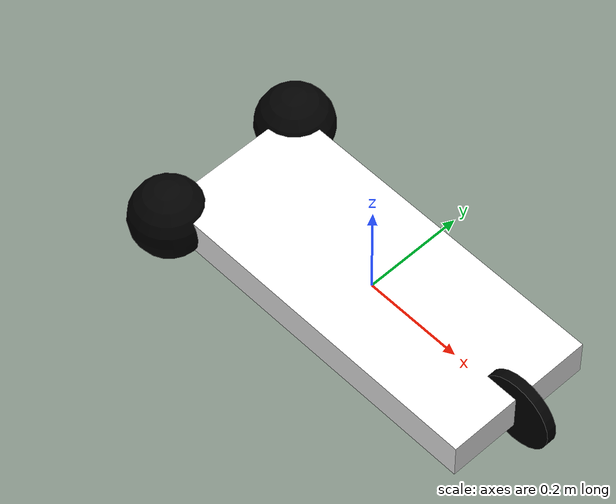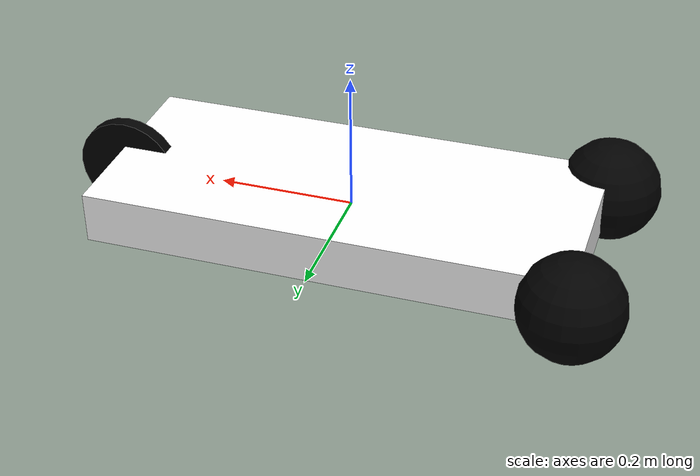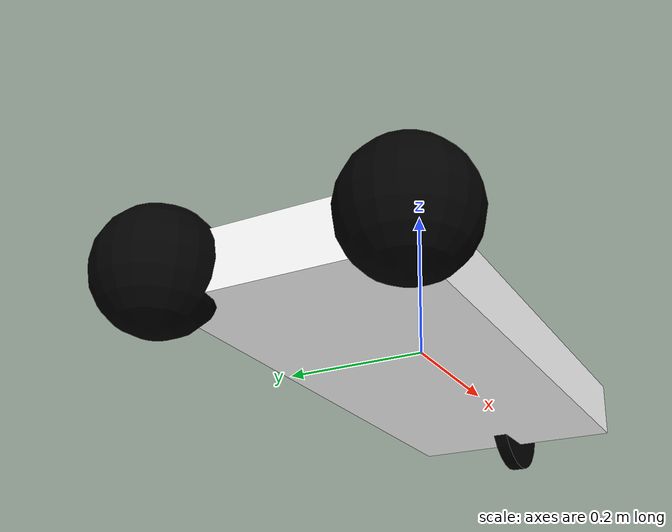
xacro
<?xml version="1.0"?>
<robot xmlns:xacro="http://www.ros.org/wiki/xacro" name="TriCycle">

  <!-- The definition of colors used in this urdf -->
  <material name="white">
    <color rgba="1 1 1 1"/>
  </material>
  <material name="black">
    <color rgba="0 0 0 1"/>
  </material>

  <!-- Property values used in this model -->
  <xacro:property name="M_PI" value="3.1415926535897931"/>

  <!--
  This is the main link of the robot. usually it is chosen to be the centre
  point of the robot.
  -->
  <link name="base_link">
    <!-- Inertia is used to simulate the physics of the robot in simulator -->
    <inertial>
      <mass value="1.0"/>
      <origin xyz="0 0 0" rpy="0 0 0"/>
      <inertia ixx="0.001" ixy="0" ixz="0" iyy="0.001" iyz="0" izz="0.001"/>
    </inertial>
    <collision>
      <origin xyz="0 0 0" rpy="0 0 0"/>
      <geometry>
        <box size="0.7 0.3 0.075"/>
      </geometry>
    </collision>
    <!--
    This is only used for visualization purposes. This can be a 3D CAD model of
    your robot.
    -->
    <visual>
      <origin xyz="0 0 0" rpy="0 0 0"/>
      <geometry>
        <box size="0.7 0.3 0.075"/>
      </geometry>
      <material name="white"/>
    </visual>
  </link>

  <!--
  The rotation axel of the tricycle
  -->
  <link name="rot_axel_link">
    <inertial>
      <mass value="0.5"/>
      <origin xyz="0 0 0" rpy="0 0 0"/>
      <inertia ixx="0.001" ixy="0" ixz="0" iyy="0.001" iyz="0" izz="0.001"/>
    </inertial>
  </link>
  <joint name="rot_axel_joint" type="continuous">
    <parent link="base_link"/>
    <child link="rot_axel_link"/>
    <origin xyz="0.35 0 0" rpy="0 0 0"/>
    <axis xyz="0 0 1"/>
  </joint>
  <transmission name="rot_axel_tran">
    <type>transmission_interface/SimpleTransmission</type>
    <joint name="rot_axel_joint">
      <hardwareInterface>hardware_interface/VelocityJointInterface</hardwareInterface>
    </joint>
    <actuator name="rot_axel_motor">
      <mechanicalReduction>1</mechanicalReduction>
    </actuator>
  </transmission>

  <!-- Front wheel of the tricycle -->
  <link name="front_wheel">
    <inertial>
      <mass value="0.5"/>
      <origin xyz="0 0 0" rpy="0 0 0"/>
      <inertia ixx="0.001" ixy="0" ixz="0" iyy="0.001" iyz="0" izz="0.001"/>
    </inertial>
    <collision>
      <origin xyz="0 0 0" rpy="${M_PI/2} 0 0"/>
      <geometry>
        <cylinder radius="0.075" length="0.02"/>
      </geometry>
    </collision>
    <visual>
      <origin xyz="0 0 0" rpy="${M_PI/2} 0 0"/>
      <geometry>
        <cylinder radius="0.075" length="0.02"/>
      </geometry>
      <material name="black"/>
    </visual>
  </link>
  <joint name="front_wheel_joint" type="continuous">
    <parent link="rot_axel_link"/>
    <child link="front_wheel"/>
    <origin xyz="0 0 0" rpy="0 0 0"/>
    <axis xyz="0 1 0"/>
  </joint>
  <transmission name="front_wheel_tran">
    <type>transmission_interface/SimpleTransmission</type>
    <joint name="front_wheel_joint">
      <hardwareInterface>hardware_interface/VelocityJointInterface</hardwareInterface>
    </joint>
    <actuator name="front_motor">
      <mechanicalReduction>1</mechanicalReduction>
    </actuator>
  </transmission>

  <!-- ros_control plugin for simulated robot -->
  <gazebo>
    <plugin name="gazebo_ros_control" filename="libgazebo_ros_control.so" />
  </gazebo>

  <!--Left caster wheel of the robot  -->
  <link name="left_caster_link">
    <visual>
      <origin rpy="0 0 0" xyz="0 0 0"/>
      <geometry>
        <sphere radius="0.075"/>
      </geometry>
      <material name="black"/>
    </visual>
    <collision>
      <geometry>
        <sphere radius="0.075"/>
      </geometry>
      <origin rpy="0 0 0" xyz="0 0 0"/>
    </collision>
    <inertial>
      <mass value="0.5"/>
      <origin xyz="0 0 0"/>
      <inertia ixx="0.001" ixy="0.0" ixz="0.0" iyy="0.001" iyz="0.0" izz="0.001"/>
    </inertial>
  </link>
  <joint name="left_caster_joint" type="fixed">
    <parent link="base_link"/>
    <child link="left_caster_link"/>
    <origin rpy="0 0 0" xyz="-0.35 0.15 0"/>
  </joint>
  <gazebo reference="left_caster_link">
    <turnGravityOff>false</turnGravityOff>
    <mu1 value="0.0"/>
    <mu2 value="0.0"/>
  </gazebo>

  <!--Right caster wheels of the robot  -->
  <link name="right_caster_link">
    <visual>
      <origin rpy="0 0 0" xyz="0 0 0"/>
      <geometry>
        <sphere radius="0.075"/>
      </geometry>
      <material name="black"/>
    </visual>
    <collision>
      <geometry>
        <sphere radius="0.075"/>
      </geometry>
      <origin rpy="0 0 0" xyz="0 0 0"/>
    </collision>
    <inertial>
      <mass value="0.5"/>
      <origin xyz="0 0 0"/>
      <inertia ixx="0.001" ixy="0.0" ixz="0.0" iyy="0.001" iyz="0.0" izz="0.001"/>
    </inertial>
  </link>
  <joint name="right_caster_joint" type="fixed">
    <parent link="base_link"/>
    <child link="right_caster_link"/>
    <origin rpy="0 0 0" xyz="-0.35 -0.15 0"/>
  </joint>
  <gazebo reference="right_caster_link">
    <turnGravityOff>false</turnGravityOff>
    <mu1 value="0.0"/>
    <mu2 value="0.0"/>
  </gazebo>

</robot>
